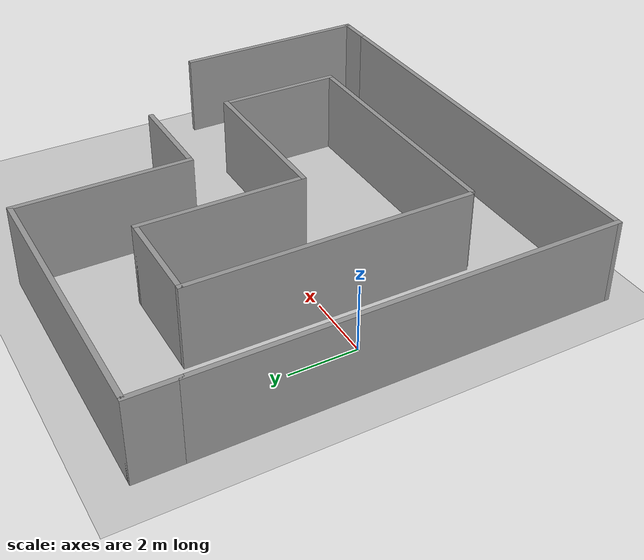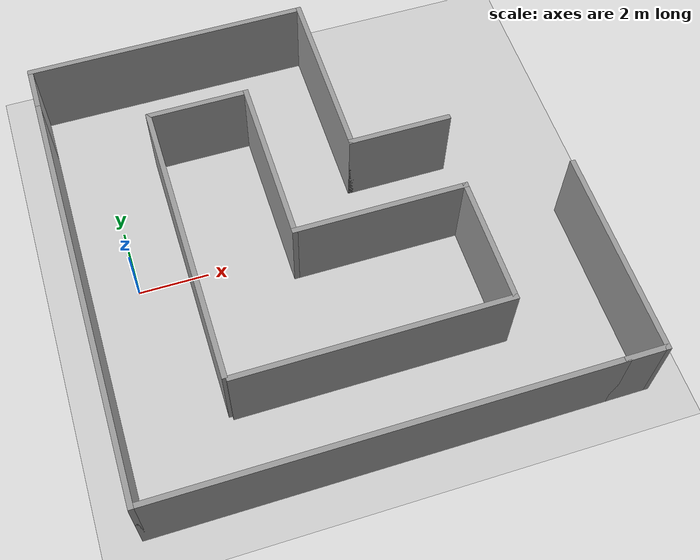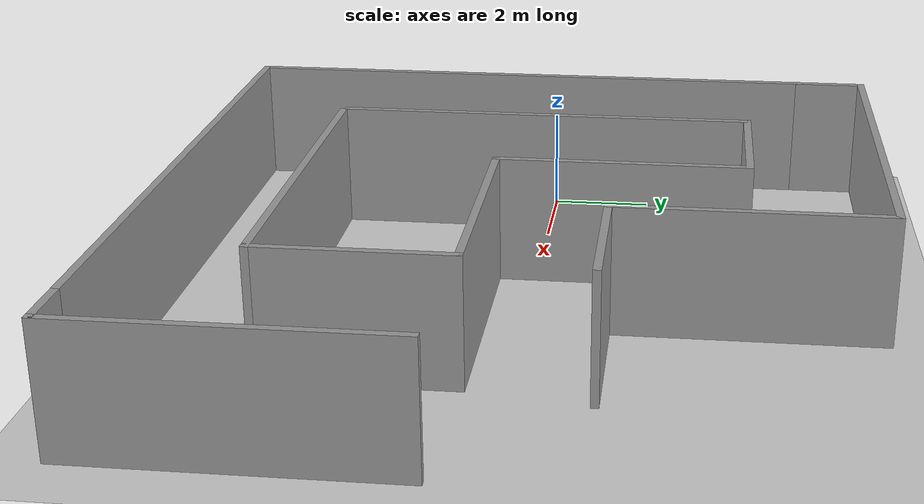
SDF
<sdf version="1.7">
 <world name="default">
  <light name="sun" type="directional">
   <pose>0 0 10 0 -0 0</pose>
   <diffuse>0.8 0.8 0.8 1</diffuse>
   <specular>0.2 0.2 0.2 1</specular>
   <attenuation>
    <range>1000</range>
    <constant>0.9</constant>
    <linear>0.01</linear>
    <quadratic>0.001</quadratic>
   </attenuation>
   <direction>-0.5 0.1 -0.9</direction>
   <spot><inner_angle>0</inner_angle><outer_angle>0</outer_angle><falloff>0</falloff></spot>
  </light>
  <model name="ground_plane">
   <static>1</static>
   <link name="link">
    <collision name="collision">
     <geometry><plane><normal>0 0 1</normal><size>100 100</size></plane></geometry>
     <surface>
      <contact><collide_bitmask>65535</collide_bitmask></contact>
      <friction><ode><mu>100</mu><mu2>50</mu2></ode></friction>
     </surface>
    </collision>
    <visual name="visual">
     <cast_shadows>0</cast_shadows>
     <geometry><plane><normal>0 0 1</normal><size>100 100</size></plane></geometry>
     <material>
      <script><uri>file://media/materials/scripts/gazebo.material</uri><name>Gazebo/Grey</name></script>
     </material>
    </visual>
   </link>
  </model>
  <gravity>0 0 -9.8</gravity>
  <magnetic_field>6e-06 2.3e-05 -4.2e-05</magnetic_field>
  <atmosphere type="adiabatic"/>
  <physics type="ode">
   <max_step_size>0.001</max_step_size>
   <real_time_factor>1</real_time_factor>
   <real_time_update_rate>1000</real_time_update_rate>
  </physics>
  <scene><ambient>0.4 0.4 0.4 1</ambient><background>0.7 0.7 0.7 1</background><shadows>1</shadows></scene>
  <spherical_coordinates>
   <surface_model>EARTH_WGS84</surface_model>
   <latitude_deg>0</latitude_deg>
   <longitude_deg>0</longitude_deg>
   <elevation>0</elevation>
   <heading_deg>0</heading_deg>
  </spherical_coordinates>
  <model name="maze_n">
   <pose>5.45247 -0.111926 0 0 -0 0</pose>
   <link name="Wall_101">
    <collision name="Wall_101_Collision">
     <geometry><box><size>12.75 0.15 2.5</size></box></geometry>
     <pose>0 0 1.25 0 -0 0</pose>
    </collision>
    <visual name="Wall_101_Visual">
     <pose>0 0 1.25 0 -0 0</pose>
     <geometry><box><size>12.75 0.15 2.5</size></box></geometry>
     <material>
      <script><uri>file://media/materials/scripts/gazebo.material</uri><name>Gazebo/Grey</name></script>
      <ambient>1 1 1 1</ambient>
     </material>
     <meta><layer>0</layer></meta>
    </visual>
    <pose>-0.55 -6.725 0 0 -0 0</pose>
   </link>
   <link name="Wall_102">
    <collision name="Wall_102_Collision">
     <geometry><box><size>1.25 0.15 2.5</size></box></geometry>
     <pose>0 0 1.25 0 -0 0</pose>
    </collision>
    <visual name="Wall_102_Visual">
     <pose>0 0 1.25 0 -0 0</pose>
     <geometry><box><size>1.25 0.15 2.5</size></box></geometry>
     <material>
      <script><uri>file://media/materials/scripts/gazebo.material</uri><name>Gazebo/Grey</name></script>
      <ambient>1 1 1 1</ambient>
     </material>
     <meta><layer>0</layer></meta>
    </visual>
    <pose>6.3 -6.725 0 0 -0 0</pose>
   </link>
   <link name="Wall_103">
    <collision name="Wall_103_Collision">
     <geometry><box><size>6 0.15 2.5</size></box></geometry>
     <pose>0 0 1.25 0 -0 0</pose>
    </collision>
    <visual name="Wall_103_Visual">
     <pose>0 0 1.25 0 -0 0</pose>
     <geometry><box><size>6 0.15 2.5</size></box></geometry>
     <material>
      <script><uri>file://media/materials/scripts/gazebo.material</uri><name>Gazebo/Grey</name></script>
      <ambient>1 1 1 1</ambient>
     </material>
     <meta><layer>0</layer></meta>
    </visual>
    <pose>6.85 -3.8 0 0 -0 1.5708</pose>
   </link>
   <link name="Wall_84">
    <collision name="Wall_84_Collision">
     <geometry><box><size>12.25 0.15 2.5</size></box></geometry>
     <pose>0 0 1.25 0 -0 0</pose>
    </collision>
    <visual name="Wall_84_Visual">
     <pose>0 0 1.25 0 -0 0</pose>
     <geometry><box><size>12.25 0.15 2.5</size></box></geometry>
     <material>
      <script><uri>file://media/materials/scripts/gazebo.material</uri><name>Gazebo/Grey</name></script>
      <ambient>1 1 1 1</ambient>
     </material>
     <meta><layer>0</layer></meta>
    </visual>
    <pose>-6.85 -0.675 0 0 -0 1.5708</pose>
   </link>
   <link name="Wall_86">
    <collision name="Wall_86_Collision">
     <geometry><box><size>8.5 0.15 2.5</size></box></geometry>
     <pose>0 0 1.25 0 -0 0</pose>
    </collision>
    <visual name="Wall_86_Visual">
     <pose>0 0 1.25 0 -0 0</pose>
     <geometry><box><size>8.5 0.15 2.5</size></box></geometry>
     <material>
      <script><uri>file://media/materials/scripts/gazebo.material</uri><name>Gazebo/Grey</name></script>
      <ambient>1 1 1 1</ambient>
     </material>
     <meta><layer>0</layer></meta>
    </visual>
    <pose>-3.9372 -0.001298 0 0 -0 1.5708</pose>
   </link>
   <link name="Wall_89">
    <collision name="Wall_89_Collision">
     <geometry><box><size>3 0.15 2.5</size></box></geometry>
     <pose>0 0 1.25 0 -0 0</pose>
    </collision>
    <visual name="Wall_89_Visual">
     <pose>0 0 1.25 0 -0 0</pose>
     <geometry><box><size>3 0.15 2.5</size></box></geometry>
     <material>
      <script><uri>file://media/materials/scripts/gazebo.material</uri><name>Gazebo/Grey</name></script>
      <ambient>1 1 1 1</ambient>
     </material>
     <meta><layer>0</layer></meta>
    </visual>
    <pose>-2.5122 4.1737 0 0 -0 0</pose>
   </link>
   <link name="Wall_90">
    <collision name="Wall_90_Collision">
     <geometry><box><size>5 0.15 2.5</size></box></geometry>
     <pose>0 0 1.25 0 -0 0</pose>
    </collision>
    <visual name="Wall_90_Visual">
     <pose>0 0 1.25 0 -0 0</pose>
     <geometry><box><size>5 0.15 2.5</size></box></geometry>
     <material>
      <script><uri>file://media/materials/scripts/gazebo.material</uri><name>Gazebo/Grey</name></script>
      <ambient>1 1 1 1</ambient>
     </material>
     <meta><layer>0</layer></meta>
    </visual>
    <pose>-1.0872 1.7487 0 0 -0 -1.5708</pose>
   </link>
   <link name="Wall_91">
    <collision name="Wall_91_Collision">
     <geometry><box><size>5 0.15 2.5</size></box></geometry>
     <pose>0 0 1.25 0 -0 0</pose>
    </collision>
    <visual name="Wall_91_Visual">
     <pose>0 0 1.25 0 -0 0</pose>
     <geometry><box><size>5 0.15 2.5</size></box></geometry>
     <material>
      <script><uri>file://media/materials/scripts/gazebo.material</uri><name>Gazebo/Grey</name></script>
      <ambient>1 1 1 1</ambient>
     </material>
     <meta><layer>0</layer></meta>
    </visual>
    <pose>1.3378 -0.676298 0 0 -0 0</pose>
   </link>
   <link name="Wall_92">
    <collision name="Wall_92_Collision">
     <geometry><box><size>3.75 0.15 2.5</size></box></geometry>
     <pose>0 0 1.25 0 -0 0</pose>
    </collision>
    <visual name="Wall_92_Visual">
     <pose>0 0 1.25 0 -0 0</pose>
     <geometry><box><size>3.75 0.15 2.5</size></box></geometry>
     <material>
      <script><uri>file://media/materials/scripts/gazebo.material</uri><name>Gazebo/Grey</name></script>
      <ambient>1 1 1 1</ambient>
     </material>
     <meta><layer>0</layer></meta>
    </visual>
    <pose>3.7628 -2.4763 0 0 -0 -1.5708</pose>
   </link>
   <link name="Wall_93">
    <collision name="Wall_93_Collision">
     <geometry><box><size>7.75 0.15 2.5</size></box></geometry>
     <pose>0 0 1.25 0 -0 0</pose>
    </collision>
    <visual name="Wall_93_Visual">
     <pose>0 0 1.25 0 -0 0</pose>
     <geometry><box><size>7.75 0.15 2.5</size></box></geometry>
     <material>
      <script><uri>file://media/materials/scripts/gazebo.material</uri><name>Gazebo/Grey</name></script>
      <ambient>1 1 1 1</ambient>
     </material>
     <meta><layer>0</layer></meta>
    </visual>
    <pose>-0.037199 -4.2763 0 0 -0 3.14159</pose>
   </link>
   <link name="Wall_96">
    <collision name="Wall_96_Collision">
     <geometry><box><size>1.5 0.15 2.5</size></box></geometry>
     <pose>0 0 1.25 0 -0 0</pose>
    </collision>
    <visual name="Wall_96_Visual">
     <pose>0 0 1.25 0 -0 0</pose>
     <geometry><box><size>1.5 0.15 2.5</size></box></geometry>
     <material>
      <script><uri>file://media/materials/scripts/gazebo.material</uri><name>Gazebo/Grey</name></script>
      <ambient>1 1 1 1</ambient>
     </material>
     <meta><layer>0</layer></meta>
    </visual>
    <pose>-6.85 6.05 0 0 -0 1.5708</pose>
   </link>
   <link name="Wall_97">
    <collision name="Wall_97_Collision">
     <geometry><box><size>8.25 0.15 2.5</size></box></geometry>
     <pose>0 0 1.25 0 -0 0</pose>
    </collision>
    <visual name="Wall_97_Visual">
     <pose>0 0 1.25 0 -0 0</pose>
     <geometry><box><size>8.25 0.15 2.5</size></box></geometry>
     <material>
      <script><uri>file://media/materials/scripts/gazebo.material</uri><name>Gazebo/Grey</name></script>
      <ambient>1 1 1 1</ambient>
     </material>
     <meta><layer>0</layer></meta>
    </visual>
    <pose>-2.8 6.725 0 0 -0 0</pose>
   </link>
   <link name="Wall_98">
    <collision name="Wall_98_Collision">
     <geometry><box><size>5.25 0.15 2.5</size></box></geometry>
     <pose>0 0 1.25 0 -0 0</pose>
    </collision>
    <visual name="Wall_98_Visual">
     <pose>0 0 1.25 0 -0 0</pose>
     <geometry><box><size>5.25 0.15 2.5</size></box></geometry>
     <material>
      <script><uri>file://media/materials/scripts/gazebo.material</uri><name>Gazebo/Grey</name></script>
      <ambient>1 1 1 1</ambient>
     </material>
     <meta><layer>0</layer></meta>
    </visual>
    <pose>1.25 4.175 0 0 -0 -1.5708</pose>
   </link>
   <link name="Wall_99">
    <collision name="Wall_99_Collision">
     <geometry><box><size>3 0.15 2.5</size></box></geometry>
     <pose>0 0 1.25 0 -0 0</pose>
    </collision>
    <visual name="Wall_99_Visual">
     <pose>0 0 1.25 0 -0 0</pose>
     <geometry><box><size>3 0.15 2.5</size></box></geometry>
     <material>
      <script><uri>file://media/materials/scripts/gazebo.material</uri><name>Gazebo/Grey</name></script>
      <ambient>1 1 1 1</ambient>
     </material>
     <meta><layer>0</layer></meta>
    </visual>
    <pose>2.675 1.625 0 0 -0 0</pose>
   </link>
   <static>1</static>
  </model>
 </world>
</sdf>
